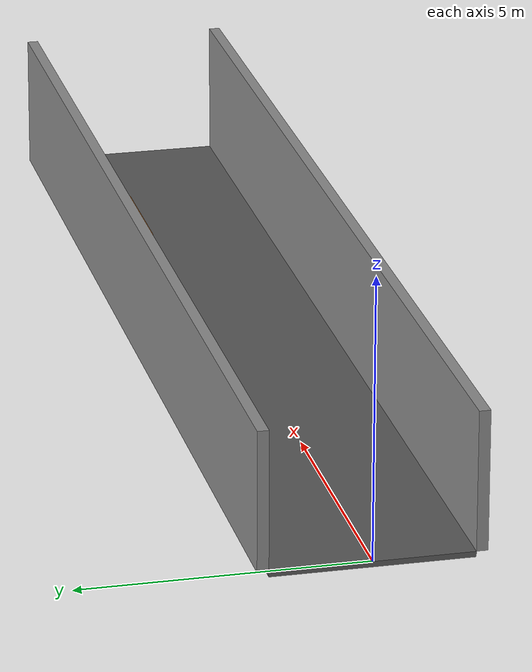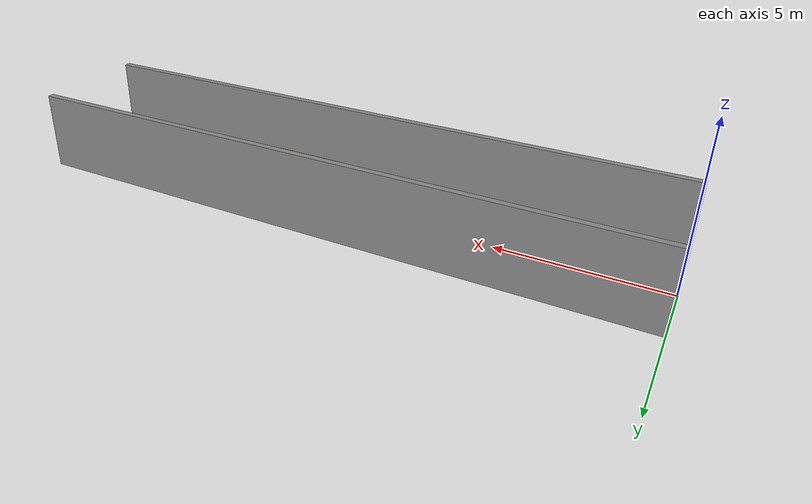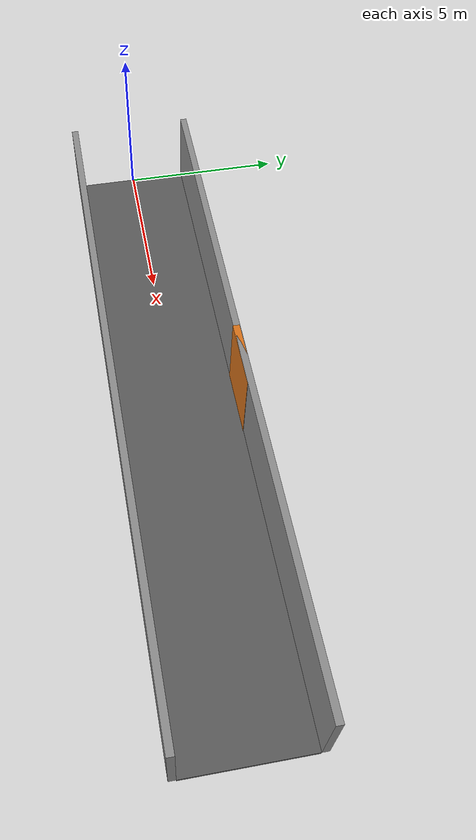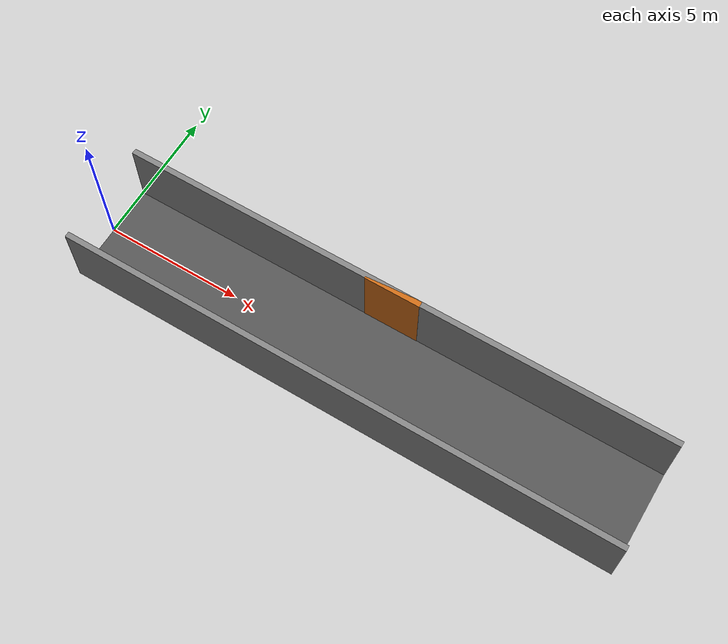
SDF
<?xml version="1.0" ?>
<sdf version="1.9">
  <world name="corridor_world">
    <physics name="1ms" type="ignored">
      <max_step_size>0.001</max_step_size>
      <real_time_factor>1.0</real_time_factor>
    </physics>
    <plugin filename="gz-sim-physics-system" name="gz::sim::systems::Physics"/>
    <plugin filename="gz-sim-user-commands-system" name="gz::sim::systems::UserCommands"/>
    <plugin filename="gz-sim-scene-broadcaster-system" name="gz::sim::systems::SceneBroadcaster"/>
    <plugin filename="gz-sim-sensors-system" name="gz::sim::systems::Sensors">
      <render_engine>ogre2</render_engine>
    </plugin>
    <plugin filename="gz-sim-imu-system" name="gz::sim::systems::Imu"/>
    <light type="directional" name="sun">
      <cast_shadows>true</cast_shadows>
      <pose>0 0 10 0 0 0</pose>
      <diffuse>0.8 0.8 0.8 1</diffuse>
      <specular>0.2 0.2 0.2 1</specular>
      <direction>-0.5 0.1 -0.9</direction>
    </light>
    <model name="floor">
      <static>true</static>
      <link name="floor_link">
        <pose>10.0 0 -0.05 0 0 0</pose>
        <collision name="floor_link_collision">
          <geometry>
            <box>
              <size>20.0 3.5 0.1</size>
            </box>
          </geometry>
        </collision>
        <visual name="floor_link_visual">
          <geometry>
            <box>
              <size>20.0 3.5 0.1</size>
            </box>
          </geometry>
          <material>
            <ambient>0.35 0.35 0.35 1.0</ambient>
            <diffuse>0.35 0.35 0.35 1.0</diffuse>
          </material>
        </visual>
      </link>
    </model>
    <model name="wall_a">
      <static>true</static>
      <link name="wall_a_link">
        <pose>10.0 1.85 1.25 0 0 0</pose>
        <collision name="wall_a_link_collision">
          <geometry>
            <box>
              <size>20.0 0.2 2.5</size>
            </box>
          </geometry>
        </collision>
        <visual name="wall_a_link_visual">
          <geometry>
            <box>
              <size>20.0 0.2 2.5</size>
            </box>
          </geometry>
          <material>
            <ambient>0.55 0.55 0.55 1.0</ambient>
            <diffuse>0.55 0.55 0.55 1.0</diffuse>
          </material>
        </visual>
      </link>
    </model>
    <model name="wall_b">
      <static>true</static>
      <link name="wall_b_link">
        <pose>10.0 -1.85 1.25 0 0 0</pose>
        <collision name="wall_b_link_collision">
          <geometry>
            <box>
              <size>20.0 0.2 2.5</size>
            </box>
          </geometry>
        </collision>
        <visual name="wall_b_link_visual">
          <geometry>
            <box>
              <size>20.0 0.2 2.5</size>
            </box>
          </geometry>
          <material>
            <ambient>0.55 0.55 0.55 1.0</ambient>
            <diffuse>0.55 0.55 0.55 1.0</diffuse>
          </material>
        </visual>
      </link>
    </model>
    <model name="wall_panel">
      <static>true</static>
      <pose>10.0 1.84 1.25 0 0 0</pose>
      <link name="wall_panel_link">
        <pose>0 0 0 0 0 0</pose>
        <collision name="wall_panel_link_collision">
          <geometry>
            <box>
              <size>2.0 0.2 2.5</size>
            </box>
          </geometry>
        </collision>
        <visual name="wall_panel_link_visual">
          <geometry>
            <box>
              <size>2.0 0.2 2.5</size>
            </box>
          </geometry>
          <material>
            <ambient>0.85 0.45 0.1 1.0</ambient>
            <diffuse>0.85 0.45 0.1 1.0</diffuse>
          </material>
        </visual>
      </link>
    </model>
  </world>
</sdf>
